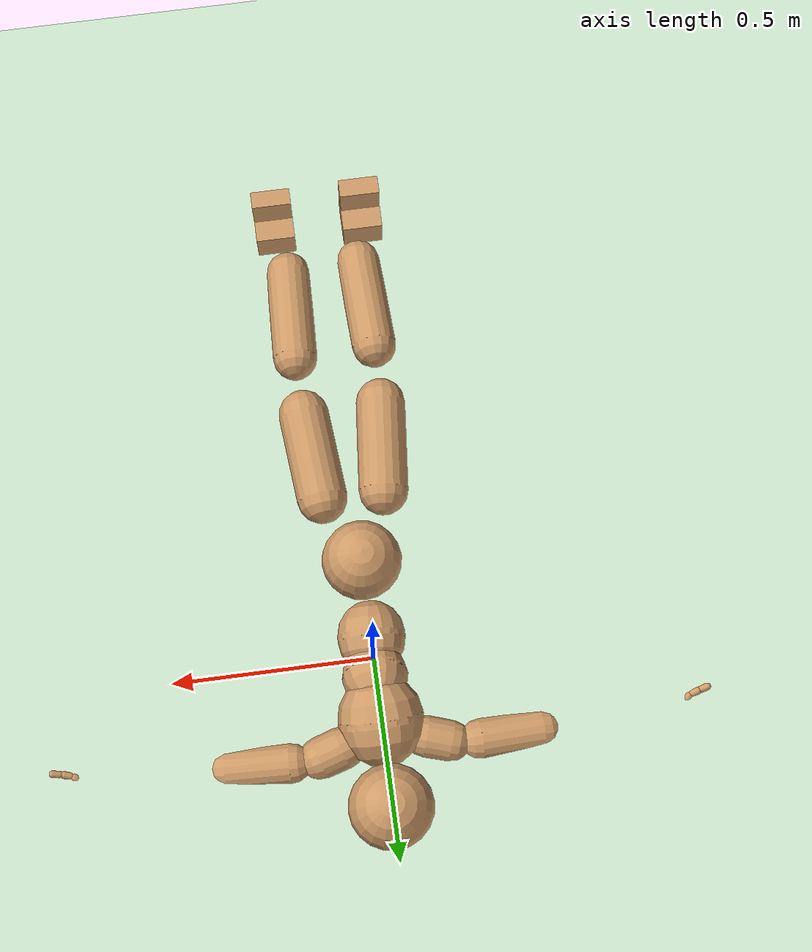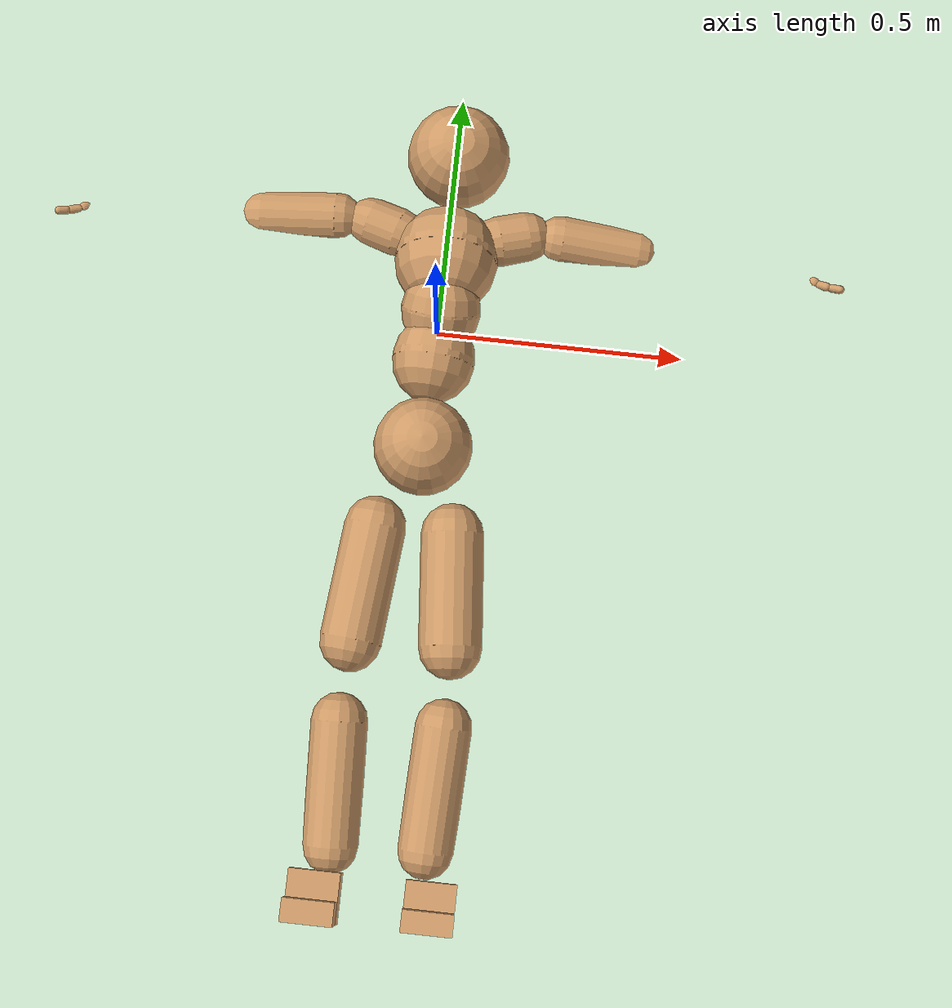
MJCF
<mujoco model="humanoid">
  <compiler coordinate="local"/>
  <default>
    <joint damping="0.0" armature="0.01" stiffness="0.0" limited="true"/>
    <geom conaffinity="1" condim="3" contype="7" margin="0.001" rgba="0.8 0.6 .4 1"/>
  </default>
  <asset>
    <texture type="skybox" builtin="gradient" rgb1=".4 .5 .6" rgb2="0 0 0" width="100" height="100"/>
    <texture builtin="flat" height="1278" mark="cross" markrgb="1 1 1" name="texgeom" random="0.01" rgb1="0.8 0.6 0.4" rgb2="0.8 0.6 0.4" type="cube" width="127"/>
    <texture builtin="checker" height="100" name="texplane" rgb1="0 0 0" rgb2="0.8 0.8 0.8" type="2d" width="100"/>
    <material name="MatPlane" reflectance="0.5" shininess="1" specular="1" texrepeat="60 60" texture="texplane"/>
    <material name="geom" texture="texgeom" texuniform="true"/>
  </asset>
  <worldbody>
    <light cutoff="100" diffuse="1 1 1" dir="-0 0 -1.3" directional="true" exponent="1" pos="0 0 1.3" specular=".1 .1 .1"/>
    <geom conaffinity="1" condim="3" name="floor" pos="0 0 0" rgba="0.8 0.9 0.8 1" size="100 100 .2" type="plane" material="MatPlane"/>
    <body name="Pelvis" pos="-0.0018 -0.243 0.0335">
      <freejoint name="Pelvis"/>
      <geom type="sphere" contype="1" conaffinity="1" density="4629.6296296296305" size="0.0997" pos="0.0000 0.0000 0.0000" name="Pelvis"/>
      <body name="L_Hip" pos="0.0714 -0.096 -0.0052">
        <joint name="L_Hip_x" type="hinge" pos="0 0 0" axis="1 0 0" user="250 2.5 1 500 10 2" armature="0.01" range="-90.0000 90.0000" damping="0" stiffness="0"/>
        <joint name="L_Hip_y" type="hinge" pos="0 0 0" axis="0 1 0" user="250 2.5 1 500 10 2" armature="0.01" range="-90.0000 90.0000" damping="0" stiffness="0"/>
        <joint name="L_Hip_z" type="hinge" pos="0 0 0" axis="0 0 1" user="250 2.5 1 500 10 2" armature="0.01" range="-90.0000 90.0000" damping="0" stiffness="0"/>
        <geom type="capsule" contype="1" conaffinity="1" density="2040.816327" fromto="0.0067 -0.0749 -0.0010 0.0266 -0.2995 -0.0039" size="0.0633" name="L_Hip"/>
        <body name="L_Knee" pos="0.0333 -0.3744 -0.0049">
          <joint name="L_Knee_x" type="hinge" pos="0 0 0" axis="1 0 0" user="250 2.5 1 500 10 2" armature="0.01" range="-180.0000 180.0000" damping="0" stiffness="0"/>
          <joint name="L_Knee_y" type="hinge" pos="0 0 0" axis="0 1 0" user="250 2.5 1 500 10 2" armature="0.01" range="-5.6250 5.6250" damping="0" stiffness="0"/>
          <joint name="L_Knee_z" type="hinge" pos="0 0 0" axis="0 0 1" user="250 2.5 1 500 10 2" armature="0.01" range="-5.6250 5.6250" damping="0" stiffness="0"/>
          <geom type="capsule" contype="1" conaffinity="1" density="1234.567901" fromto="-0.0030 -0.0806 -0.0091 -0.0120 -0.3226 -0.0365" size="0.0562" name="L_Knee"/>
          <body name="L_Ankle" pos="-0.0151 -0.4032 -0.0457">
            <joint name="L_Ankle_x" type="hinge" pos="0 0 0" axis="1 0 0" user="150 2.5 1 500 10 2" armature="0.01" range="-90.0000 90.0000" damping="0" stiffness="0"/>
            <joint name="L_Ankle_y" type="hinge" pos="0 0 0" axis="0 1 0" user="150 2.5 1 500 10 2" armature="0.01" range="-90.0000 90.0000" damping="0" stiffness="0"/>
            <joint name="L_Ankle_z" type="hinge" pos="0 0 0" axis="0 0 1" user="150 2.5 1 500 10 2" armature="0.01" range="-90.0000 90.0000" damping="0" stiffness="0"/>
            <geom type="box" density="462.875484" pos="0.0227 -0.0240 0.0252" size="0.0491 0.0479 0.0877" quat="1.0000 0.0000 0.0000 0.0000" name="L_Ankle"/>
            <body name="L_Toe" pos="0.0252 -0.0564 0.1234">
              <joint name="L_Toe_x" type="hinge" pos="0 0 0" axis="1 0 0" user="150 1 1 500 1 1" armature="0.01" range="-90.0000 90.0000" damping="0" stiffness="0"/>
              <joint name="L_Toe_y" type="hinge" pos="0 0 0" axis="0 1 0" user="150 1 1 500 1 1" armature="0.01" range="-45.0000 45.0000" damping="0" stiffness="0"/>
              <joint name="L_Toe_z" type="hinge" pos="0 0 0" axis="0 0 1" user="150 1 1 500 1 1" armature="0.01" range="-45.0000 45.0000" damping="0" stiffness="0"/>
              <geom type="box" density="422.487532" pos="-0.0025 0.0058 0.0260" size="0.0491 0.0212 0.0516" quat="1.0000 0.0000 0.0000 0.0000" name="L_Toe"/>
            </body>
          </body>
        </body>
      </body>
      <body name="R_Hip" pos="-0.0695 -0.0947 -0.0021">
        <joint name="R_Hip_x" type="hinge" pos="0 0 0" axis="1 0 0" user="250 2.5 1 500 10 2" armature="0.01" range="-90.0000 90.0000" damping="0" stiffness="0"/>
        <joint name="R_Hip_y" type="hinge" pos="0 0 0" axis="0 1 0" user="250 2.5 1 500 10 2" armature="0.01" range="-90.0000 90.0000" damping="0" stiffness="0"/>
        <joint name="R_Hip_z" type="hinge" pos="0 0 0" axis="0 0 1" user="250 2.5 1 500 10 2" armature="0.01" range="-90.0000 90.0000" damping="0" stiffness="0"/>
        <geom type="capsule" contype="1" conaffinity="1" density="2040.816327" fromto="-0.0074 -0.0769 -0.0019 -0.0297 -0.3075 -0.0076" size="0.0624" name="R_Hip"/>
        <body name="R_Knee" pos="-0.0371 -0.3844 -0.0096">
          <joint name="R_Knee_x" type="hinge" pos="0 0 0" axis="1 0 0" user="250 2.5 1 500 10 2" armature="0.01" range="-180.0000 180.0000" damping="0" stiffness="0"/>
          <joint name="R_Knee_y" type="hinge" pos="0 0 0" axis="0 1 0" user="250 2.5 1 500 10 2" armature="0.01" range="-5.6250 5.6250" damping="0" stiffness="0"/>
          <joint name="R_Knee_z" type="hinge" pos="0 0 0" axis="0 0 1" user="250 2.5 1 500 10 2" armature="0.01" range="-5.6250 5.6250" damping="0" stiffness="0"/>
          <geom type="capsule" contype="1" conaffinity="1" density="1234.567901" fromto="0.0034 -0.0809 -0.0089 0.0136 -0.3236 -0.0355" size="0.0561" name="R_Knee"/>
          <body name="R_Ankle" pos="0.017 -0.4044 -0.0444">
            <joint name="R_Ankle_x" type="hinge" pos="0 0 0" axis="1 0 0" user="150 1 1 500 10 2" armature="0.01" range="-90.0000 90.0000" damping="0" stiffness="0"/>
            <joint name="R_Ankle_y" type="hinge" pos="0 0 0" axis="0 1 0" user="150 1 1 500 10 2" armature="0.01" range="-90.0000 90.0000" damping="0" stiffness="0"/>
            <joint name="R_Ankle_z" type="hinge" pos="0 0 0" axis="0 0 1" user="150 1 1 500 10 2" armature="0.01" range="-90.0000 90.0000" damping="0" stiffness="0"/>
            <geom type="box" density="438.069638" pos="-0.0225 -0.0175 0.0262" size="0.0502 0.0495 0.0888" quat="1.0000 0.0000 0.0000 0.0000" name="R_Ankle"/>
            <body name="R_Toe" pos="-0.0271 -0.0483 0.1273">
              <joint name="R_Toe_x" type="hinge" pos="0 0 0" axis="1 0 0" user="150 1 1 500 1 1" armature="0.01" range="-90.0000 90.0000" damping="0" stiffness="0"/>
              <joint name="R_Toe_y" type="hinge" pos="0 0 0" axis="0 1 0" user="150 1 1 500 1 1" armature="0.01" range="-45.0000 45.0000" damping="0" stiffness="0"/>
              <joint name="R_Toe_z" type="hinge" pos="0 0 0" axis="0 0 1" user="150 1 1 500 1 1" armature="0.01" range="-45.0000 45.0000" damping="0" stiffness="0"/>
              <geom type="box" density="419.550965" pos="0.0046 0.0039 0.0223" size="0.0498 0.0226 0.0506" quat="1.0000 0.0000 0.0000 0.0000" name="R_Toe"/>
            </body>
          </body>
        </body>
      </body>
      <body name="Torso" pos="-0.0027 0.116 -0.0322">
        <joint name="Torso_x" type="hinge" pos="0 0 0" axis="1 0 0" user="500 5 1 500 10 2" armature="0.01" range="-60.0000 60.0000" damping="0" stiffness="0"/>
        <joint name="Torso_y" type="hinge" pos="0 0 0" axis="0 1 0" user="500 5 1 500 10 2" armature="0.01" range="-60.0000 60.0000" damping="0" stiffness="0"/>
        <joint name="Torso_z" type="hinge" pos="0 0 0" axis="0 0 1" user="500 5 1 500 10 2" armature="0.01" range="-60.0000 60.0000" damping="0" stiffness="0"/>
        <geom type="capsule" contype="1" conaffinity="1" density="2040.816327" fromto="0.0029 0.0654 -0.0003 0.0036 0.0799 -0.0004" size="0.084" name="Torso"/>
        <body name="Spine" pos="0.0065 0.1453 -0.0007">
          <joint name="Spine_x" type="hinge" pos="0 0 0" axis="1 0 0" user="500 5 1 500 10 2" armature="0.01" range="-60.0000 60.0000" damping="0" stiffness="0"/>
          <joint name="Spine_y" type="hinge" pos="0 0 0" axis="0 1 0" user="500 5 1 500 10 2" armature="0.01" range="-60.0000 60.0000" damping="0" stiffness="0"/>
          <joint name="Spine_z" type="hinge" pos="0 0 0" axis="0 0 1" user="500 5 1 500 10 2" armature="0.01" range="-60.0000 60.0000" damping="0" stiffness="0"/>
          <geom type="capsule" contype="1" conaffinity="1" density="2040.816327" fromto="0.0005 0.0257 0.0126 0.0006 0.0314 0.0154" size="0.0815" name="Spine"/>
          <body name="Chest" pos="0.0012 0.0571 0.0281">
            <joint name="Chest_x" type="hinge" pos="0 0 0" axis="1 0 0" user="500 5 1 500 10 2" armature="0.01" range="-60.0000 60.0000" damping="0" stiffness="0"/>
            <joint name="Chest_y" type="hinge" pos="0 0 0" axis="0 1 0" user="500 5 1 500 10 2" armature="0.01" range="-60.0000 60.0000" damping="0" stiffness="0"/>
            <joint name="Chest_z" type="hinge" pos="0 0 0" axis="0 0 1" user="500 5 1 500 10 2" armature="0.01" range="-60.0000 60.0000" damping="0" stiffness="0"/>
            <geom type="capsule" contype="1" conaffinity="1" density="2040.816327" fromto="-0.0011 0.0716 -0.0187 -0.0014 0.0875 -0.0228" size="0.1057" name="Chest"/>
            <body name="Neck" pos="-0.0038 0.225 -0.0459">
              <joint name="Neck_x" type="hinge" pos="0 0 0" axis="1 0 0" user="150 1 1 250 50 4" armature="0.01" range="-180.0000 180.0000" damping="0" stiffness="0"/>
              <joint name="Neck_y" type="hinge" pos="0 0 0" axis="0 1 0" user="150 1 1 250 50 4" armature="0.01" range="-180.0000 180.0000" damping="0" stiffness="0"/>
              <joint name="Neck_z" type="hinge" pos="0 0 0" axis="0 0 1" user="150 1 1 250 50 4" armature="0.01" range="-180.0000 180.0000" damping="0" stiffness="0"/>
              <geom type="capsule" contype="1" conaffinity="1" density="1000" fromto="0.0010 0.0135 0.0108 0.0041 0.0540 0.0434" size="0.0458" name="Neck"/>
              <body name="Head" pos="0.0051 0.0675 0.0542">
                <joint name="Head_x" type="hinge" pos="0 0 0" axis="1 0 0" user="150 1 1 250 50 4" armature="0.01" range="-90.0000 90.0000" damping="0" stiffness="0"/>
                <joint name="Head_y" type="hinge" pos="0 0 0" axis="0 1 0" user="150 1 1 250 50 4" armature="0.01" range="-90.0000 90.0000" damping="0" stiffness="0"/>
                <joint name="Head_z" type="hinge" pos="0 0 0" axis="0 0 1" user="150 1 1 250 50 4" armature="0.01" range="-90.0000 90.0000" damping="0" stiffness="0"/>
                <geom type="sphere" contype="1" conaffinity="1" density="1000" size="0.1051" pos="0.0000 0.0000 0.0000" name="Head"/>
              </body>
            </body>
            <body name="L_Thorax" pos="0.0813 0.1275 -0.0372">
              <joint name="L_Thorax_x" type="hinge" pos="0 0 0" axis="1 0 0" user="200 2 1 500 50 4" armature="0.01" range="-180.0000 180.0000" damping="0" stiffness="0"/>
              <joint name="L_Thorax_y" type="hinge" pos="0 0 0" axis="0 1 0" user="200 2 1 500 50 4" armature="0.01" range="-180.0000 180.0000" damping="0" stiffness="0"/>
              <joint name="L_Thorax_z" type="hinge" pos="0 0 0" axis="0 0 1" user="200 2 1 500 50 4" armature="0.01" range="-180.0000 180.0000" damping="0" stiffness="0"/>
              <geom type="capsule" contype="1" conaffinity="1" density="1000" fromto="0.0188 0.0058 -0.0021 0.0753 0.0233 -0.0082" size="0.0547" name="L_Thorax"/>
              <body name="L_Shoulder" pos="0.0942 0.0291 -0.0103">
                <joint name="L_Shoulder_x" type="hinge" pos="0 0 0" axis="1 0 0" user="200 2 1 500 50 4" armature="0.01" range="-180.0000 180.0000" damping="0" stiffness="0"/>
                <joint name="L_Shoulder_y" type="hinge" pos="0 0 0" axis="0 1 0" user="200 2 1 500 50 4" armature="0.01" range="-180.0000 180.0000" damping="0" stiffness="0"/>
                <joint name="L_Shoulder_z" type="hinge" pos="0 0 0" axis="0 0 1" user="200 2 1 500 50 4" armature="0.01" range="-180.0000 180.0000" damping="0" stiffness="0"/>
                <geom type="capsule" contype="1" conaffinity="1" density="1000" fromto="0.0528 -0.0024 -0.0058 0.2113 -0.0098 -0.0232" size="0.0542" name="L_Shoulder"/>
                <body name="L_Elbow" pos="0.2641 -0.0122 -0.029">
                  <joint name="L_Elbow_x" type="hinge" pos="0 0 0" axis="1 0 0" user="150 1 1 150 10 2" armature="0.01" range="-720.0000 720.0000" damping="0" stiffness="0"/>
                  <joint name="L_Elbow_y" type="hinge" pos="0 0 0" axis="0 1 0" user="150 1 1 150 10 2" armature="0.01" range="-720.0000 720.0000" damping="0" stiffness="0"/>
                  <joint name="L_Elbow_z" type="hinge" pos="0 0 0" axis="0 0 1" user="150 1 1 150 10 2" armature="0.01" range="-720.0000 720.0000" damping="0" stiffness="0"/>
                  <geom type="capsule" contype="1" conaffinity="1" density="1000" fromto="0.0510 0.0018 -0.0002 0.2039 0.0071 -0.0007" size="0.0426" name="L_Elbow"/>
                  <body name="L_Wrist" pos="0.2548 0.0089 -0.0008">
                    <joint name="L_Wrist_x" type="hinge" pos="0 0 0" axis="1 0 0" user="100 1 1 150 1 1" armature="0.01" range="-180.0000 180.0000" damping="0" stiffness="0"/>
                    <joint name="L_Wrist_y" type="hinge" pos="0 0 0" axis="0 1 0" user="100 1 1 150 1 1" armature="0.01" range="-180.0000 180.0000" damping="0" stiffness="0"/>
                    <joint name="L_Wrist_z" type="hinge" pos="0 0 0" axis="0 0 1" user="100 1 1 150 1 1" armature="0.01" range="-180.0000 180.0000" damping="0" stiffness="0"/>
                    <geom type="capsule" contype="1" conaffinity="1" density="1000" fromto="0.0180 -0.0023 -0.0008 0.0721 -0.0091 -0.0030" size="0.0303" name="L_Wrist"/>
                    <body name="L_Index1" pos="0.1057 -0.0088 0.0222">
                      <joint name="L_Index1_x" type="hinge" pos="0 0 0" axis="1 0 0" user="100 10 1 150" armature="0.01" range="-180.0000 180.0000" damping="0" stiffness="0"/>
                      <joint name="L_Index1_y" type="hinge" pos="0 0 0" axis="0 1 0" user="100 10 1 150" armature="0.01" range="-180.0000 180.0000" damping="0" stiffness="0"/>
                      <joint name="L_Index1_z" type="hinge" pos="0 0 0" axis="0 0 1" user="100 10 1 150" armature="0.01" range="-180.0000 180.0000" damping="0" stiffness="0"/>
                      <geom type="capsule" contype="1" conaffinity="1" density="1000" fromto="0.0062 -0.0022 0.0003 0.0249 -0.0088 0.0013" size="0.0093" name="L_Index1"/>
                      <body name="L_Index2" pos="0.0311 -0.011 0.0016">
                        <joint name="L_Index2_x" type="hinge" pos="0 0 0" axis="1 0 0" user="100 10 1 150" armature="0.01" range="-180.0000 180.0000" damping="0" stiffness="0"/>
                        <joint name="L_Index2_y" type="hinge" pos="0 0 0" axis="0 1 0" user="100 10 1 150" armature="0.01" range="-180.0000 180.0000" damping="0" stiffness="0"/>
                        <joint name="L_Index2_z" type="hinge" pos="0 0 0" axis="0 0 1" user="100 10 1 150" armature="0.01" range="-180.0000 180.0000" damping="0" stiffness="0"/>
                        <geom type="capsule" contype="1" conaffinity="1" density="1000" fromto="0.0014 -0.0044 -0.0004 0.0056 -0.0176 -0.0014" size="0.0075" name="L_Index2"/>
                        <body name="L_Index3" pos="0.007 -0.022 -0.0018">
                          <joint name="L_Index3_x" type="hinge" pos="0 0 0" axis="1 0 0" user="100 10 1 150" armature="0.01" range="-180.0000 180.0000" damping="0" stiffness="0"/>
                          <joint name="L_Index3_y" type="hinge" pos="0 0 0" axis="0 1 0" user="100 10 1 150" armature="0.01" range="-180.0000 180.0000" damping="0" stiffness="0"/>
                          <joint name="L_Index3_z" type="hinge" pos="0 0 0" axis="0 0 1" user="100 10 1 150" armature="0.01" range="-180.0000 180.0000" damping="0" stiffness="0"/>
                          <geom type="capsule" contype="1" conaffinity="1" density="1000" fromto="0.0018 -0.0040 0.0000 0.0072 -0.0160 0.0002" size="0.0068" name="L_Index3"/>
                        </body>
                      </body>
                    </body>
                    <body name="L_Middle1" pos="0.1133 -0.0058 -0.0014">
                      <joint name="L_Middle1_x" type="hinge" pos="0 0 0" axis="1 0 0" user="100 10 1 150" armature="0.01" range="-180.0000 180.0000" damping="0" stiffness="0"/>
                      <joint name="L_Middle1_y" type="hinge" pos="0 0 0" axis="0 1 0" user="100 10 1 150" armature="0.01" range="-180.0000 180.0000" damping="0" stiffness="0"/>
                      <joint name="L_Middle1_z" type="hinge" pos="0 0 0" axis="0 0 1" user="100 10 1 150" armature="0.01" range="-180.0000 180.0000" damping="0" stiffness="0"/>
                      <geom type="capsule" contype="1" conaffinity="1" density="1000" fromto="0.0055 -0.0031 -0.0010 0.0219 -0.0123 -0.0038" size="0.0094" name="L_Middle1"/>
                      <body name="L_Middle2" pos="0.0273 -0.0154 -0.0048">
                        <joint name="L_Middle2_x" type="hinge" pos="0 0 0" axis="1 0 0" user="100 10 1 150" armature="0.01" range="-180.0000 180.0000" damping="0" stiffness="0"/>
                        <joint name="L_Middle2_y" type="hinge" pos="0 0 0" axis="0 1 0" user="100 10 1 150" armature="0.01" range="-180.0000 180.0000" damping="0" stiffness="0"/>
                        <joint name="L_Middle2_z" type="hinge" pos="0 0 0" axis="0 0 1" user="100 10 1 150" armature="0.01" range="-180.0000 180.0000" damping="0" stiffness="0"/>
                        <geom type="capsule" contype="1" conaffinity="1" density="1000" fromto="0.0011 -0.0048 -0.0003 0.0045 -0.0191 -0.0011" size="0.007" name="L_Middle2"/>
                        <body name="L_Middle3" pos="0.0057 -0.0238 -0.0014">
                          <joint name="L_Middle3_x" type="hinge" pos="0 0 0" axis="1 0 0" user="100 10 1 150" armature="0.01" range="-180.0000 180.0000" damping="0" stiffness="0"/>
                          <joint name="L_Middle3_y" type="hinge" pos="0 0 0" axis="0 1 0" user="100 10 1 150" armature="0.01" range="-180.0000 180.0000" damping="0" stiffness="0"/>
                          <joint name="L_Middle3_z" type="hinge" pos="0 0 0" axis="0 0 1" user="100 10 1 150" armature="0.01" range="-180.0000 180.0000" damping="0" stiffness="0"/>
                          <geom type="capsule" contype="1" conaffinity="1" density="1000" fromto="0.0015 -0.0044 0.0001 0.0061 -0.0175 0.0005" size="0.0063" name="L_Middle3"/>
                        </body>
                      </body>
                    </body>
                    <body name="L_Pinky1" pos="0.0875 -0.0136 -0.0422">
                      <joint name="L_Pinky1_x" type="hinge" pos="0 0 0" axis="1 0 0" user="100 10 1 150" armature="0.01" range="-180.0000 180.0000" damping="0" stiffness="0"/>
                      <joint name="L_Pinky1_y" type="hinge" pos="0 0 0" axis="0 1 0" user="100 10 1 150" armature="0.01" range="-180.0000 180.0000" damping="0" stiffness="0"/>
                      <joint name="L_Pinky1_z" type="hinge" pos="0 0 0" axis="0 0 1" user="100 10 1 150" armature="0.01" range="-180.0000 180.0000" damping="0" stiffness="0"/>
                      <geom type="capsule" contype="1" conaffinity="1" density="1000" fromto="0.0027 -0.0028 -0.0009 0.0106 -0.0112 -0.0036" size="0.0071" name="L_Pinky1"/>
                      <body name="L_Pinky2" pos="0.0133 -0.014 -0.0046">
                        <joint name="L_Pinky2_x" type="hinge" pos="0 0 0" axis="1 0 0" user="100 10 1 150" armature="0.01" range="-180.0000 180.0000" damping="0" stiffness="0"/>
                        <joint name="L_Pinky2_y" type="hinge" pos="0 0 0" axis="0 1 0" user="100 10 1 150" armature="0.01" range="-180.0000 180.0000" damping="0" stiffness="0"/>
                        <joint name="L_Pinky2_z" type="hinge" pos="0 0 0" axis="0 0 1" user="100 10 1 150" armature="0.01" range="-180.0000 180.0000" damping="0" stiffness="0"/>
                        <geom type="capsule" contype="1" conaffinity="1" density="1000" fromto="0.0009 -0.0038 0.0002 0.0036 -0.0151 0.0010" size="0.0064" name="L_Pinky2"/>
                        <body name="L_Pinky3" pos="0.0045 -0.0189 0.0012">
                          <joint name="L_Pinky3_x" type="hinge" pos="0 0 0" axis="1 0 0" user="100 10 1 150" armature="0.01" range="-180.0000 180.0000" damping="0" stiffness="0"/>
                          <joint name="L_Pinky3_y" type="hinge" pos="0 0 0" axis="0 1 0" user="100 10 1 150" armature="0.01" range="-180.0000 180.0000" damping="0" stiffness="0"/>
                          <joint name="L_Pinky3_z" type="hinge" pos="0 0 0" axis="0 0 1" user="100 10 1 150" armature="0.01" range="-180.0000 180.0000" damping="0" stiffness="0"/>
                          <geom type="capsule" contype="1" conaffinity="1" density="1000" fromto="0.0013 -0.0034 0.0006 0.0052 -0.0135 0.0026" size="0.0052" name="L_Pinky3"/>
                        </body>
                      </body>
                    </body>
                    <body name="L_Ring1" pos="0.1011 -0.0084 -0.0252">
                      <joint name="L_Ring1_x" type="hinge" pos="0 0 0" axis="1 0 0" user="100 10 1 150" armature="0.01" range="-180.0000 180.0000" damping="0" stiffness="0"/>
                      <joint name="L_Ring1_y" type="hinge" pos="0 0 0" axis="0 1 0" user="100 10 1 150" armature="0.01" range="-180.0000 180.0000" damping="0" stiffness="0"/>
                      <joint name="L_Ring1_z" type="hinge" pos="0 0 0" axis="0 0 1" user="100 10 1 150" armature="0.01" range="-180.0000 180.0000" damping="0" stiffness="0"/>
                      <geom type="capsule" contype="1" conaffinity="1" density="1000" fromto="0.0048 -0.0032 -0.0002 0.0193 -0.0130 -0.0007" size="0.008" name="L_Ring1"/>
                      <body name="L_Ring2" pos="0.0241 -0.0162 -0.0009">
                        <joint name="L_Ring2_x" type="hinge" pos="0 0 0" axis="1 0 0" user="100 10 1 150" armature="0.01" range="-180.0000 180.0000" damping="0" stiffness="0"/>
                        <joint name="L_Ring2_y" type="hinge" pos="0 0 0" axis="0 1 0" user="100 10 1 150" armature="0.01" range="-180.0000 180.0000" damping="0" stiffness="0"/>
                        <joint name="L_Ring2_z" type="hinge" pos="0 0 0" axis="0 0 1" user="100 10 1 150" armature="0.01" range="-180.0000 180.0000" damping="0" stiffness="0"/>
                        <geom type="capsule" contype="1" conaffinity="1" density="1000" fromto="0.0009 -0.0048 0.0003 0.0035 -0.0191 0.0012" size="0.0074" name="L_Ring2"/>
                        <body name="L_Ring3" pos="0.0044 -0.0238 0.0015">
                          <joint name="L_Ring3_x" type="hinge" pos="0 0 0" axis="1 0 0" user="100 10 1 150" armature="0.01" range="-180.0000 180.0000" damping="0" stiffness="0"/>
                          <joint name="L_Ring3_y" type="hinge" pos="0 0 0" axis="0 1 0" user="100 10 1 150" armature="0.01" range="-180.0000 180.0000" damping="0" stiffness="0"/>
                          <joint name="L_Ring3_z" type="hinge" pos="0 0 0" axis="0 0 1" user="100 10 1 150" armature="0.01" range="-180.0000 180.0000" damping="0" stiffness="0"/>
                          <geom type="capsule" contype="1" conaffinity="1" density="1000" fromto="0.0013 -0.0044 0.0007 0.0051 -0.0175 0.0028" size="0.006" name="L_Ring3"/>
                        </body>
                      </body>
                    </body>
                    <body name="L_Thumb1" pos="0.0432 -0.0203 0.0278">
                      <joint name="L_Thumb1_x" type="hinge" pos="0 0 0" axis="1 0 0" user="100 10 1 150" armature="0.01" range="-180.0000 180.0000" damping="0" stiffness="0"/>
                      <joint name="L_Thumb1_y" type="hinge" pos="0 0 0" axis="0 1 0" user="100 10 1 150" armature="0.01" range="-180.0000 180.0000" damping="0" stiffness="0"/>
                      <joint name="L_Thumb1_z" type="hinge" pos="0 0 0" axis="0 0 1" user="100 10 1 150" armature="0.01" range="-180.0000 180.0000" damping="0" stiffness="0"/>
                      <geom type="capsule" contype="1" conaffinity="1" density="1000" fromto="0.0046 -0.0034 0.0024 0.0184 -0.0135 0.0098" size="0.0125" name="L_Thumb1"/>
                      <body name="L_Thumb2" pos="0.023 -0.0169 0.0122">
                        <joint name="L_Thumb2_x" type="hinge" pos="0 0 0" axis="1 0 0" user="100 10 1 150" armature="0.01" range="-180.0000 180.0000" damping="0" stiffness="0"/>
                        <joint name="L_Thumb2_y" type="hinge" pos="0 0 0" axis="0 1 0" user="100 10 1 150" armature="0.01" range="-180.0000 180.0000" damping="0" stiffness="0"/>
                        <joint name="L_Thumb2_z" type="hinge" pos="0 0 0" axis="0 0 1" user="100 10 1 150" armature="0.01" range="-180.0000 180.0000" damping="0" stiffness="0"/>
                        <geom type="capsule" contype="1" conaffinity="1" density="1000" fromto="0.0051 -0.0013 0.0013 0.0202 -0.0053 0.0053" size="0.0094" name="L_Thumb2"/>
                        <body name="L_Thumb3" pos="0.0253 -0.0066 0.0066">
                          <joint name="L_Thumb3_x" type="hinge" pos="0 0 0" axis="1 0 0" user="100 10 1 150" armature="0.01" range="-180.0000 180.0000" damping="0" stiffness="0"/>
                          <joint name="L_Thumb3_y" type="hinge" pos="0 0 0" axis="0 1 0" user="100 10 1 150" armature="0.01" range="-180.0000 180.0000" damping="0" stiffness="0"/>
                          <joint name="L_Thumb3_z" type="hinge" pos="0 0 0" axis="0 0 1" user="100 10 1 150" armature="0.01" range="-180.0000 180.0000" damping="0" stiffness="0"/>
                          <geom type="capsule" contype="1" conaffinity="1" density="1000" fromto="0.0055 -0.0009 0.0017 0.0218 -0.0037 0.0069" size="0.0086" name="L_Thumb3"/>
                        </body>
                      </body>
                    </body>
                  </body>
                </body>
              </body>
            </body>
            <body name="R_Thorax" pos="-0.0849 0.125 -0.0415">
              <joint name="R_Thorax_x" type="hinge" pos="0 0 0" axis="1 0 0" user="200 2 1 150 10 2" armature="0.01" range="-180.0000 180.0000" damping="0" stiffness="0"/>
              <joint name="R_Thorax_y" type="hinge" pos="0 0 0" axis="0 1 0" user="200 2 1 150 10 2" armature="0.01" range="-180.0000 180.0000" damping="0" stiffness="0"/>
              <joint name="R_Thorax_z" type="hinge" pos="0 0 0" axis="0 0 1" user="200 2 1 150 10 2" armature="0.01" range="-180.0000 180.0000" damping="0" stiffness="0"/>
              <geom type="capsule" contype="1" conaffinity="1" density="1000" fromto="-0.0199 0.0062 -0.0019 -0.0798 0.0249 -0.0075" size="0.0535" name="R_Thorax"/>
              <body name="R_Shoulder" pos="-0.0997 0.0311 -0.0094">
                <joint name="R_Shoulder_x" type="hinge" pos="0 0 0" axis="1 0 0" user="200 2 1 250 10 2" armature="0.01" range="-180.0000 180.0000" damping="0" stiffness="0"/>
                <joint name="R_Shoulder_y" type="hinge" pos="0 0 0" axis="0 1 0" user="200 2 1 250 10 2" armature="0.01" range="-180.0000 180.0000" damping="0" stiffness="0"/>
                <joint name="R_Shoulder_z" type="hinge" pos="0 0 0" axis="0 0 1" user="200 2 1 250 10 2" armature="0.01" range="-180.0000 180.0000" damping="0" stiffness="0"/>
                <geom type="capsule" contype="1" conaffinity="1" density="1000" fromto="-0.0516 -0.0023 -0.0046 -0.2064 -0.0091 -0.0186" size="0.0555" name="R_Shoulder"/>
                <body name="R_Elbow" pos="-0.258 -0.0114 -0.0232">
                  <joint name="R_Elbow_x" type="hinge" pos="0 0 0" axis="1 0 0" user="150 1 1 150 10 2" armature="0.01" range="-720.0000 720.0000" damping="0" stiffness="0"/>
                  <joint name="R_Elbow_y" type="hinge" pos="0 0 0" axis="0 1 0" user="150 1 1 150 10 2" armature="0.01" range="-720.0000 720.0000" damping="0" stiffness="0"/>
                  <joint name="R_Elbow_z" type="hinge" pos="0 0 0" axis="0 0 1" user="150 1 1 150 10 2" armature="0.01" range="-720.0000 720.0000" damping="0" stiffness="0"/>
                  <geom type="capsule" contype="1" conaffinity="1" density="1000" fromto="-0.0520 0.0015 -0.0012 -0.2078 0.0060 -0.0049" size="0.0429" name="R_Elbow"/>
                  <body name="R_Wrist" pos="-0.2598 0.0075 -0.0061">
                    <joint name="R_Wrist_x" type="hinge" pos="0 0 0" axis="1 0 0" user="100 1 1 150 1 1" armature="0.01" range="-180.0000 180.0000" damping="0" stiffness="0"/>
                    <joint name="R_Wrist_y" type="hinge" pos="0 0 0" axis="0 1 0" user="100 1 1 150 1 1" armature="0.01" range="-180.0000 180.0000" damping="0" stiffness="0"/>
                    <joint name="R_Wrist_z" type="hinge" pos="0 0 0" axis="0 0 1" user="100 1 1 150 1 1" armature="0.01" range="-180.0000 180.0000" damping="0" stiffness="0"/>
                    <geom type="capsule" contype="1" conaffinity="1" density="1000" fromto="-0.0175 -0.0023 -0.0002 -0.0699 -0.0090 -0.0009" size="0.0312" name="R_Wrist"/>
                    <body name="R_Index1" pos="-0.1025 -0.0086 0.0258">
                      <joint name="R_Index1_x" type="hinge" pos="0 0 0" axis="1 0 0" user="100 10 1 150" armature="0.01" range="-180.0000 180.0000" damping="0" stiffness="0"/>
                      <joint name="R_Index1_y" type="hinge" pos="0 0 0" axis="0 1 0" user="100 10 1 150" armature="0.01" range="-180.0000 180.0000" damping="0" stiffness="0"/>
                      <joint name="R_Index1_z" type="hinge" pos="0 0 0" axis="0 0 1" user="100 10 1 150" armature="0.01" range="-180.0000 180.0000" damping="0" stiffness="0"/>
                      <geom type="capsule" contype="1" conaffinity="1" density="1000" fromto="-0.0063 -0.0022 0.0001 -0.0252 -0.0087 0.0005" size="0.0097" name="R_Index1"/>
                      <body name="R_Index2" pos="-0.0315 -0.0109 0.0006">
                        <joint name="R_Index2_x" type="hinge" pos="0 0 0" axis="1 0 0" user="100 10 1 150" armature="0.01" range="-180.0000 180.0000" damping="0" stiffness="0"/>
                        <joint name="R_Index2_y" type="hinge" pos="0 0 0" axis="0 1 0" user="100 10 1 150" armature="0.01" range="-180.0000 180.0000" damping="0" stiffness="0"/>
                        <joint name="R_Index2_z" type="hinge" pos="0 0 0" axis="0 0 1" user="100 10 1 150" armature="0.01" range="-180.0000 180.0000" damping="0" stiffness="0"/>
                        <geom type="capsule" contype="1" conaffinity="1" density="1000" fromto="-0.0014 -0.0043 -0.0006 -0.0057 -0.0174 -0.0023" size="0.0079" name="R_Index2"/>
                        <body name="R_Index3" pos="-0.0071 -0.0217 -0.0029">
                          <joint name="R_Index3_x" type="hinge" pos="0 0 0" axis="1 0 0" user="100 10 1 150" armature="0.01" range="-180.0000 180.0000" damping="0" stiffness="0"/>
                          <joint name="R_Index3_y" type="hinge" pos="0 0 0" axis="0 1 0" user="100 10 1 150" armature="0.01" range="-180.0000 180.0000" damping="0" stiffness="0"/>
                          <joint name="R_Index3_z" type="hinge" pos="0 0 0" axis="0 0 1" user="100 10 1 150" armature="0.01" range="-180.0000 180.0000" damping="0" stiffness="0"/>
                          <geom type="capsule" contype="1" conaffinity="1" density="1000" fromto="-0.0010 -0.0039 -0.0002 -0.0041 -0.0158 -0.0007" size="0.0071" name="R_Index3"/>
                        </body>
                      </body>
                    </body>
                    <body name="R_Middle1" pos="-0.1107 -0.0052 0.0011">
                      <joint name="R_Middle1_x" type="hinge" pos="0 0 0" axis="1 0 0" user="100 10 1 150" armature="0.01" range="-180.0000 180.0000" damping="0" stiffness="0"/>
                      <joint name="R_Middle1_y" type="hinge" pos="0 0 0" axis="0 1 0" user="100 10 1 150" armature="0.01" range="-180.0000 180.0000" damping="0" stiffness="0"/>
                      <joint name="R_Middle1_z" type="hinge" pos="0 0 0" axis="0 0 1" user="100 10 1 150" armature="0.01" range="-180.0000 180.0000" damping="0" stiffness="0"/>
                      <geom type="capsule" contype="1" conaffinity="1" density="1000" fromto="-0.0055 -0.0030 -0.0010 -0.0219 -0.0120 -0.0039" size="0.0098" name="R_Middle1"/>
                      <body name="R_Middle2" pos="-0.0274 -0.015 -0.0049">
                        <joint name="R_Middle2_x" type="hinge" pos="0 0 0" axis="1 0 0" user="100 10 1 150" armature="0.01" range="-180.0000 180.0000" damping="0" stiffness="0"/>
                        <joint name="R_Middle2_y" type="hinge" pos="0 0 0" axis="0 1 0" user="100 10 1 150" armature="0.01" range="-180.0000 180.0000" damping="0" stiffness="0"/>
                        <joint name="R_Middle2_z" type="hinge" pos="0 0 0" axis="0 0 1" user="100 10 1 150" armature="0.01" range="-180.0000 180.0000" damping="0" stiffness="0"/>
                        <geom type="capsule" contype="1" conaffinity="1" density="1000" fromto="-0.0011 -0.0047 -0.0004 -0.0045 -0.0188 -0.0015" size="0.0073" name="R_Middle2"/>
                        <body name="R_Middle3" pos="-0.0056 -0.0235 -0.0019">
                          <joint name="R_Middle3_x" type="hinge" pos="0 0 0" axis="1 0 0" user="100 10 1 150" armature="0.01" range="-180.0000 180.0000" damping="0" stiffness="0"/>
                          <joint name="R_Middle3_y" type="hinge" pos="0 0 0" axis="0 1 0" user="100 10 1 150" armature="0.01" range="-180.0000 180.0000" damping="0" stiffness="0"/>
                          <joint name="R_Middle3_z" type="hinge" pos="0 0 0" axis="0 0 1" user="100 10 1 150" armature="0.01" range="-180.0000 180.0000" damping="0" stiffness="0"/>
                          <geom type="capsule" contype="1" conaffinity="1" density="1000" fromto="-0.0007 -0.0043 0.0000 -0.0029 -0.0172 0.0001" size="0.0066" name="R_Middle3"/>
                        </body>
                      </body>
                    </body>
                    <body name="R_Pinky1" pos="-0.0859 -0.0137 -0.0406">
                      <joint name="R_Pinky1_x" type="hinge" pos="0 0 0" axis="1 0 0" user="100 10 1 150" armature="0.01" range="-180.0000 180.0000" damping="0" stiffness="0"/>
                      <joint name="R_Pinky1_y" type="hinge" pos="0 0 0" axis="0 1 0" user="100 10 1 150" armature="0.01" range="-180.0000 180.0000" damping="0" stiffness="0"/>
                      <joint name="R_Pinky1_z" type="hinge" pos="0 0 0" axis="0 0 1" user="100 10 1 150" armature="0.01" range="-180.0000 180.0000" damping="0" stiffness="0"/>
                      <geom type="capsule" contype="1" conaffinity="1" density="1000" fromto="-0.0026 -0.0028 -0.0010 -0.0105 -0.0112 -0.0039" size="0.0072" name="R_Pinky1"/>
                      <body name="R_Pinky2" pos="-0.0131 -0.014 -0.0049">
                        <joint name="R_Pinky2_x" type="hinge" pos="0 0 0" axis="1 0 0" user="100 10 1 150" armature="0.01" range="-180.0000 180.0000" damping="0" stiffness="0"/>
                        <joint name="R_Pinky2_y" type="hinge" pos="0 0 0" axis="0 1 0" user="100 10 1 150" armature="0.01" range="-180.0000 180.0000" damping="0" stiffness="0"/>
                        <joint name="R_Pinky2_z" type="hinge" pos="0 0 0" axis="0 0 1" user="100 10 1 150" armature="0.01" range="-180.0000 180.0000" damping="0" stiffness="0"/>
                        <geom type="capsule" contype="1" conaffinity="1" density="1000" fromto="-0.0009 -0.0037 0.0002 -0.0037 -0.0150 0.0008" size="0.0065" name="R_Pinky2"/>
                        <body name="R_Pinky3" pos="-0.0046 -0.0187 0.0011">
                          <joint name="R_Pinky3_x" type="hinge" pos="0 0 0" axis="1 0 0" user="100 10 1 150" armature="0.01" range="-180.0000 180.0000" damping="0" stiffness="0"/>
                          <joint name="R_Pinky3_y" type="hinge" pos="0 0 0" axis="0 1 0" user="100 10 1 150" armature="0.01" range="-180.0000 180.0000" damping="0" stiffness="0"/>
                          <joint name="R_Pinky3_z" type="hinge" pos="0 0 0" axis="0 0 1" user="100 10 1 150" armature="0.01" range="-180.0000 180.0000" damping="0" stiffness="0"/>
                          <geom type="capsule" contype="1" conaffinity="1" density="1000" fromto="-0.0005 -0.0033 0.0006 -0.0021 -0.0134 0.0024" size="0.0053" name="R_Pinky3"/>
                        </body>
                      </body>
                    </body>
                    <body name="R_Ring1" pos="-0.099 -0.008 -0.0235">
                      <joint name="R_Ring1_x" type="hinge" pos="0 0 0" axis="1 0 0" user="100 10 1 150" armature="0.01" range="-180.0000 180.0000" damping="0" stiffness="0"/>
                      <joint name="R_Ring1_y" type="hinge" pos="0 0 0" axis="0 1 0" user="100 10 1 150" armature="0.01" range="-180.0000 180.0000" damping="0" stiffness="0"/>
                      <joint name="R_Ring1_z" type="hinge" pos="0 0 0" axis="0 0 1" user="100 10 1 150" armature="0.01" range="-180.0000 180.0000" damping="0" stiffness="0"/>
                      <geom type="capsule" contype="1" conaffinity="1" density="1000" fromto="-0.0048 -0.0032 -0.0003 -0.0193 -0.0128 -0.0010" size="0.0081" name="R_Ring1"/>
                      <body name="R_Ring2" pos="-0.0241 -0.0159 -0.0013">
                        <joint name="R_Ring2_x" type="hinge" pos="0 0 0" axis="1 0 0" user="100 10 1 150" armature="0.01" range="-180.0000 180.0000" damping="0" stiffness="0"/>
                        <joint name="R_Ring2_y" type="hinge" pos="0 0 0" axis="0 1 0" user="100 10 1 150" armature="0.01" range="-180.0000 180.0000" damping="0" stiffness="0"/>
                        <joint name="R_Ring2_z" type="hinge" pos="0 0 0" axis="0 0 1" user="100 10 1 150" armature="0.01" range="-180.0000 180.0000" damping="0" stiffness="0"/>
                        <geom type="capsule" contype="1" conaffinity="1" density="1000" fromto="-0.0009 -0.0048 0.0002 -0.0034 -0.0191 0.0007" size="0.0075" name="R_Ring2"/>
                        <body name="R_Ring3" pos="-0.0043 -0.0238 0.0009">
                          <joint name="R_Ring3_x" type="hinge" pos="0 0 0" axis="1 0 0" user="100 10 1 150" armature="0.01" range="-180.0000 180.0000" damping="0" stiffness="0"/>
                          <joint name="R_Ring3_y" type="hinge" pos="0 0 0" axis="0 1 0" user="100 10 1 150" armature="0.01" range="-180.0000 180.0000" damping="0" stiffness="0"/>
                          <joint name="R_Ring3_z" type="hinge" pos="0 0 0" axis="0 0 1" user="100 10 1 150" armature="0.01" range="-180.0000 180.0000" damping="0" stiffness="0"/>
                          <geom type="capsule" contype="1" conaffinity="1" density="1000" fromto="-0.0005 -0.0044 0.0006 -0.0018 -0.0175 0.0023" size="0.0063" name="R_Ring3"/>
                        </body>
                      </body>
                    </body>
                    <body name="R_Thumb1" pos="-0.039 -0.0208 0.0315">
                      <joint name="R_Thumb1_x" type="hinge" pos="0 0 0" axis="1 0 0" user="100 10 1 150" armature="0.01" range="-180.0000 180.0000" damping="0" stiffness="0"/>
                      <joint name="R_Thumb1_y" type="hinge" pos="0 0 0" axis="0 1 0" user="100 10 1 150" armature="0.01" range="-180.0000 180.0000" damping="0" stiffness="0"/>
                      <joint name="R_Thumb1_z" type="hinge" pos="0 0 0" axis="0 0 1" user="100 10 1 150" armature="0.01" range="-180.0000 180.0000" damping="0" stiffness="0"/>
                      <geom type="capsule" contype="1" conaffinity="1" density="1000" fromto="-0.0045 -0.0036 0.0024 -0.0181 -0.0144 0.0094" size="0.0124" name="R_Thumb1"/>
                      <body name="R_Thumb2" pos="-0.0226 -0.018 0.0118">
                        <joint name="R_Thumb2_x" type="hinge" pos="0 0 0" axis="1 0 0" user="100 10 1 150" armature="0.01" range="-180.0000 180.0000" damping="0" stiffness="0"/>
                        <joint name="R_Thumb2_y" type="hinge" pos="0 0 0" axis="0 1 0" user="100 10 1 150" armature="0.01" range="-180.0000 180.0000" damping="0" stiffness="0"/>
                        <joint name="R_Thumb2_z" type="hinge" pos="0 0 0" axis="0 0 1" user="100 10 1 150" armature="0.01" range="-180.0000 180.0000" damping="0" stiffness="0"/>
                        <geom type="capsule" contype="1" conaffinity="1" density="1000" fromto="-0.0050 -0.0016 0.0012 -0.0202 -0.0064 0.0047" size="0.0094" name="R_Thumb2"/>
                        <body name="R_Thumb3" pos="-0.0252 -0.008 0.0058">
                          <joint name="R_Thumb3_x" type="hinge" pos="0 0 0" axis="1 0 0" user="100 10 1 150" armature="0.01" range="-180.0000 180.0000" damping="0" stiffness="0"/>
                          <joint name="R_Thumb3_y" type="hinge" pos="0 0 0" axis="0 1 0" user="100 10 1 150" armature="0.01" range="-180.0000 180.0000" damping="0" stiffness="0"/>
                          <joint name="R_Thumb3_z" type="hinge" pos="0 0 0" axis="0 0 1" user="100 10 1 150" armature="0.01" range="-180.0000 180.0000" damping="0" stiffness="0"/>
                          <geom type="capsule" contype="1" conaffinity="1" density="1000" fromto="-0.0046 -0.0012 0.0016 -0.0186 -0.0048 0.0063" size="0.009" name="R_Thumb3"/>
                        </body>
                      </body>
                    </body>
                  </body>
                </body>
              </body>
            </body>
          </body>
        </body>
      </body>
    </body>
  </worldbody>
  <actuator>
    <motor name="L_Hip_x" joint="L_Hip_x" gear="1"/>
    <motor name="L_Hip_y" joint="L_Hip_y" gear="1"/>
    <motor name="L_Hip_z" joint="L_Hip_z" gear="1"/>
    <motor name="L_Knee_x" joint="L_Knee_x" gear="1"/>
    <motor name="L_Knee_y" joint="L_Knee_y" gear="1"/>
    <motor name="L_Knee_z" joint="L_Knee_z" gear="1"/>
    <motor name="L_Ankle_x" joint="L_Ankle_x" gear="1"/>
    <motor name="L_Ankle_y" joint="L_Ankle_y" gear="1"/>
    <motor name="L_Ankle_z" joint="L_Ankle_z" gear="1"/>
    <motor name="L_Toe_x" joint="L_Toe_x" gear="1"/>
    <motor name="L_Toe_y" joint="L_Toe_y" gear="1"/>
    <motor name="L_Toe_z" joint="L_Toe_z" gear="1"/>
    <motor name="R_Hip_x" joint="R_Hip_x" gear="1"/>
    <motor name="R_Hip_y" joint="R_Hip_y" gear="1"/>
    <motor name="R_Hip_z" joint="R_Hip_z" gear="1"/>
    <motor name="R_Knee_x" joint="R_Knee_x" gear="1"/>
    <motor name="R_Knee_y" joint="R_Knee_y" gear="1"/>
    <motor name="R_Knee_z" joint="R_Knee_z" gear="1"/>
    <motor name="R_Ankle_x" joint="R_Ankle_x" gear="1"/>
    <motor name="R_Ankle_y" joint="R_Ankle_y" gear="1"/>
    <motor name="R_Ankle_z" joint="R_Ankle_z" gear="1"/>
    <motor name="R_Toe_x" joint="R_Toe_x" gear="1"/>
    <motor name="R_Toe_y" joint="R_Toe_y" gear="1"/>
    <motor name="R_Toe_z" joint="R_Toe_z" gear="1"/>
    <motor name="Torso_x" joint="Torso_x" gear="1"/>
    <motor name="Torso_y" joint="Torso_y" gear="1"/>
    <motor name="Torso_z" joint="Torso_z" gear="1"/>
    <motor name="Spine_x" joint="Spine_x" gear="1"/>
    <motor name="Spine_y" joint="Spine_y" gear="1"/>
    <motor name="Spine_z" joint="Spine_z" gear="1"/>
    <motor name="Chest_x" joint="Chest_x" gear="1"/>
    <motor name="Chest_y" joint="Chest_y" gear="1"/>
    <motor name="Chest_z" joint="Chest_z" gear="1"/>
    <motor name="Neck_x" joint="Neck_x" gear="1"/>
    <motor name="Neck_y" joint="Neck_y" gear="1"/>
    <motor name="Neck_z" joint="Neck_z" gear="1"/>
    <motor name="Head_x" joint="Head_x" gear="1"/>
    <motor name="Head_y" joint="Head_y" gear="1"/>
    <motor name="Head_z" joint="Head_z" gear="1"/>
    <motor name="L_Thorax_x" joint="L_Thorax_x" gear="1"/>
    <motor name="L_Thorax_y" joint="L_Thorax_y" gear="1"/>
    <motor name="L_Thorax_z" joint="L_Thorax_z" gear="1"/>
    <motor name="L_Shoulder_x" joint="L_Shoulder_x" gear="1"/>
    <motor name="L_Shoulder_y" joint="L_Shoulder_y" gear="1"/>
    <motor name="L_Shoulder_z" joint="L_Shoulder_z" gear="1"/>
    <motor name="L_Elbow_x" joint="L_Elbow_x" gear="1"/>
    <motor name="L_Elbow_y" joint="L_Elbow_y" gear="1"/>
    <motor name="L_Elbow_z" joint="L_Elbow_z" gear="1"/>
    <motor name="L_Wrist_x" joint="L_Wrist_x" gear="1"/>
    <motor name="L_Wrist_y" joint="L_Wrist_y" gear="1"/>
    <motor name="L_Wrist_z" joint="L_Wrist_z" gear="1"/>
    <motor name="L_Index1_x" joint="L_Index1_x" gear="1"/>
    <motor name="L_Index1_y" joint="L_Index1_y" gear="1"/>
    <motor name="L_Index1_z" joint="L_Index1_z" gear="1"/>
    <motor name="L_Index2_x" joint="L_Index2_x" gear="1"/>
    <motor name="L_Index2_y" joint="L_Index2_y" gear="1"/>
    <motor name="L_Index2_z" joint="L_Index2_z" gear="1"/>
    <motor name="L_Index3_x" joint="L_Index3_x" gear="1"/>
    <motor name="L_Index3_y" joint="L_Index3_y" gear="1"/>
    <motor name="L_Index3_z" joint="L_Index3_z" gear="1"/>
    <motor name="L_Middle1_x" joint="L_Middle1_x" gear="1"/>
    <motor name="L_Middle1_y" joint="L_Middle1_y" gear="1"/>
    <motor name="L_Middle1_z" joint="L_Middle1_z" gear="1"/>
    <motor name="L_Middle2_x" joint="L_Middle2_x" gear="1"/>
    <motor name="L_Middle2_y" joint="L_Middle2_y" gear="1"/>
    <motor name="L_Middle2_z" joint="L_Middle2_z" gear="1"/>
    <motor name="L_Middle3_x" joint="L_Middle3_x" gear="1"/>
    <motor name="L_Middle3_y" joint="L_Middle3_y" gear="1"/>
    <motor name="L_Middle3_z" joint="L_Middle3_z" gear="1"/>
    <motor name="L_Pinky1_x" joint="L_Pinky1_x" gear="1"/>
    <motor name="L_Pinky1_y" joint="L_Pinky1_y" gear="1"/>
    <motor name="L_Pinky1_z" joint="L_Pinky1_z" gear="1"/>
    <motor name="L_Pinky2_x" joint="L_Pinky2_x" gear="1"/>
    <motor name="L_Pinky2_y" joint="L_Pinky2_y" gear="1"/>
    <motor name="L_Pinky2_z" joint="L_Pinky2_z" gear="1"/>
    <motor name="L_Pinky3_x" joint="L_Pinky3_x" gear="1"/>
    <motor name="L_Pinky3_y" joint="L_Pinky3_y" gear="1"/>
    <motor name="L_Pinky3_z" joint="L_Pinky3_z" gear="1"/>
    <motor name="L_Ring1_x" joint="L_Ring1_x" gear="1"/>
    <motor name="L_Ring1_y" joint="L_Ring1_y" gear="1"/>
    <motor name="L_Ring1_z" joint="L_Ring1_z" gear="1"/>
    <motor name="L_Ring2_x" joint="L_Ring2_x" gear="1"/>
    <motor name="L_Ring2_y" joint="L_Ring2_y" gear="1"/>
    <motor name="L_Ring2_z" joint="L_Ring2_z" gear="1"/>
    <motor name="L_Ring3_x" joint="L_Ring3_x" gear="1"/>
    <motor name="L_Ring3_y" joint="L_Ring3_y" gear="1"/>
    <motor name="L_Ring3_z" joint="L_Ring3_z" gear="1"/>
    <motor name="L_Thumb1_x" joint="L_Thumb1_x" gear="1"/>
    <motor name="L_Thumb1_y" joint="L_Thumb1_y" gear="1"/>
    <motor name="L_Thumb1_z" joint="L_Thumb1_z" gear="1"/>
    <motor name="L_Thumb2_x" joint="L_Thumb2_x" gear="1"/>
    <motor name="L_Thumb2_y" joint="L_Thumb2_y" gear="1"/>
    <motor name="L_Thumb2_z" joint="L_Thumb2_z" gear="1"/>
    <motor name="L_Thumb3_x" joint="L_Thumb3_x" gear="1"/>
    <motor name="L_Thumb3_y" joint="L_Thumb3_y" gear="1"/>
    <motor name="L_Thumb3_z" joint="L_Thumb3_z" gear="1"/>
    <motor name="R_Thorax_x" joint="R_Thorax_x" gear="1"/>
    <motor name="R_Thorax_y" joint="R_Thorax_y" gear="1"/>
    <motor name="R_Thorax_z" joint="R_Thorax_z" gear="1"/>
    <motor name="R_Shoulder_x" joint="R_Shoulder_x" gear="1"/>
    <motor name="R_Shoulder_y" joint="R_Shoulder_y" gear="1"/>
    <motor name="R_Shoulder_z" joint="R_Shoulder_z" gear="1"/>
    <motor name="R_Elbow_x" joint="R_Elbow_x" gear="1"/>
    <motor name="R_Elbow_y" joint="R_Elbow_y" gear="1"/>
    <motor name="R_Elbow_z" joint="R_Elbow_z" gear="1"/>
    <motor name="R_Wrist_x" joint="R_Wrist_x" gear="1"/>
    <motor name="R_Wrist_y" joint="R_Wrist_y" gear="1"/>
    <motor name="R_Wrist_z" joint="R_Wrist_z" gear="1"/>
    <motor name="R_Index1_x" joint="R_Index1_x" gear="1"/>
    <motor name="R_Index1_y" joint="R_Index1_y" gear="1"/>
    <motor name="R_Index1_z" joint="R_Index1_z" gear="1"/>
    <motor name="R_Index2_x" joint="R_Index2_x" gear="1"/>
    <motor name="R_Index2_y" joint="R_Index2_y" gear="1"/>
    <motor name="R_Index2_z" joint="R_Index2_z" gear="1"/>
    <motor name="R_Index3_x" joint="R_Index3_x" gear="1"/>
    <motor name="R_Index3_y" joint="R_Index3_y" gear="1"/>
    <motor name="R_Index3_z" joint="R_Index3_z" gear="1"/>
    <motor name="R_Middle1_x" joint="R_Middle1_x" gear="1"/>
    <motor name="R_Middle1_y" joint="R_Middle1_y" gear="1"/>
    <motor name="R_Middle1_z" joint="R_Middle1_z" gear="1"/>
    <motor name="R_Middle2_x" joint="R_Middle2_x" gear="1"/>
    <motor name="R_Middle2_y" joint="R_Middle2_y" gear="1"/>
    <motor name="R_Middle2_z" joint="R_Middle2_z" gear="1"/>
    <motor name="R_Middle3_x" joint="R_Middle3_x" gear="1"/>
    <motor name="R_Middle3_y" joint="R_Middle3_y" gear="1"/>
    <motor name="R_Middle3_z" joint="R_Middle3_z" gear="1"/>
    <motor name="R_Pinky1_x" joint="R_Pinky1_x" gear="1"/>
    <motor name="R_Pinky1_y" joint="R_Pinky1_y" gear="1"/>
    <motor name="R_Pinky1_z" joint="R_Pinky1_z" gear="1"/>
    <motor name="R_Pinky2_x" joint="R_Pinky2_x" gear="1"/>
    <motor name="R_Pinky2_y" joint="R_Pinky2_y" gear="1"/>
    <motor name="R_Pinky2_z" joint="R_Pinky2_z" gear="1"/>
    <motor name="R_Pinky3_x" joint="R_Pinky3_x" gear="1"/>
    <motor name="R_Pinky3_y" joint="R_Pinky3_y" gear="1"/>
    <motor name="R_Pinky3_z" joint="R_Pinky3_z" gear="1"/>
    <motor name="R_Ring1_x" joint="R_Ring1_x" gear="1"/>
    <motor name="R_Ring1_y" joint="R_Ring1_y" gear="1"/>
    <motor name="R_Ring1_z" joint="R_Ring1_z" gear="1"/>
    <motor name="R_Ring2_x" joint="R_Ring2_x" gear="1"/>
    <motor name="R_Ring2_y" joint="R_Ring2_y" gear="1"/>
    <motor name="R_Ring2_z" joint="R_Ring2_z" gear="1"/>
    <motor name="R_Ring3_x" joint="R_Ring3_x" gear="1"/>
    <motor name="R_Ring3_y" joint="R_Ring3_y" gear="1"/>
    <motor name="R_Ring3_z" joint="R_Ring3_z" gear="1"/>
    <motor name="R_Thumb1_x" joint="R_Thumb1_x" gear="1"/>
    <motor name="R_Thumb1_y" joint="R_Thumb1_y" gear="1"/>
    <motor name="R_Thumb1_z" joint="R_Thumb1_z" gear="1"/>
    <motor name="R_Thumb2_x" joint="R_Thumb2_x" gear="1"/>
    <motor name="R_Thumb2_y" joint="R_Thumb2_y" gear="1"/>
    <motor name="R_Thumb2_z" joint="R_Thumb2_z" gear="1"/>
    <motor name="R_Thumb3_x" joint="R_Thumb3_x" gear="1"/>
    <motor name="R_Thumb3_y" joint="R_Thumb3_y" gear="1"/>
    <motor name="R_Thumb3_z" joint="R_Thumb3_z" gear="1"/>
  </actuator>
  <contact>
    <exclude body1="Torso" body2="Chest"/>
    <exclude body1="Head" body2="Chest"/>
    <exclude body1="R_Knee" body2="R_Toe"/>
    <exclude body1="R_Knee" body2="L_Ankle"/>
    <exclude body1="R_Knee" body2="L_Toe"/>
    <exclude body1="L_Knee" body2="L_Toe"/>
    <exclude body1="L_Knee" body2="R_Ankle"/>
    <exclude body1="L_Knee" body2="R_Toe"/>
    <exclude body1="L_Shoulder" body2="Chest"/>
    <exclude body1="R_Shoulder" body2="Chest"/>
  </contact>
  <sensor/>
  <size njmax="700" nconmax="700"/>
</mujoco>
